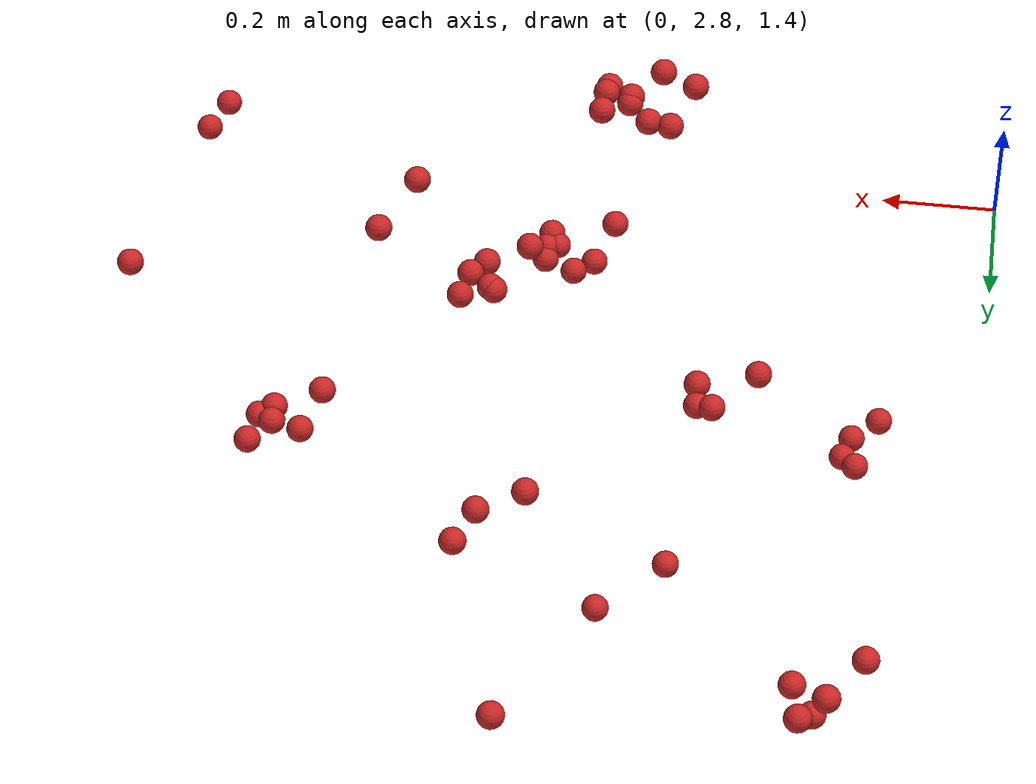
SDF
<sdf version="1.4">
 <model name="fruit_population">
  <static>true</static>
  <link name="fruit_55">
   <pose>0.16170665496099731 4.018935598410896 1.6611038940639071 0 0 0</pose>
   <collision name="fruit_collision_55"><geometry><sphere><radius>0.022</radius></sphere></geometry></collision>
   <visual name="visual">
    <geometry><sphere><radius>0.022</radius></sphere></geometry>
    <material><script><name>Gazebo/Red</name></script></material>
   </visual>
   <inertial>
    <mass>0.05</mass>
    <inertia>
     <ixx>9.679999999999999e-06</ixx>
     <ixy>0.0</ixy>
     <ixz>0.0</ixz>
     <iyy>9.679999999999999e-06</iyy>
     <iyz>0.0</iyz>
     <izz>9.679999999999999e-06</izz>
    </inertia>
   </inertial>
   <sensor name="fruit_contact_55" type="contact">
    <plugin name="contact_plugin_55" filename="libcontact_plugin.so"/>
    <contact><collision>fruit_collision_55</collision><topic>fruit_contact_topic_55</topic></contact>
   </sensor>
  </link>
  <link name="fruit_56">
   <pose>0.7132835538557942 4.231449451580651 1.7222298759507062 0 0 0</pose>
   <collision name="fruit_collision_56"><geometry><sphere><radius>0.022</radius></sphere></geometry></collision>
   <visual name="visual">
    <geometry><sphere><radius>0.022</radius></sphere></geometry>
    <material><script><name>Gazebo/Red</name></script></material>
   </visual>
   <inertial>
    <mass>0.05</mass>
    <inertia>
     <ixx>9.679999999999999e-06</ixx>
     <ixy>0.0</ixy>
     <ixz>0.0</ixz>
     <iyy>9.679999999999999e-06</iyy>
     <iyz>0.0</iyz>
     <izz>9.679999999999999e-06</izz>
    </inertia>
   </inertial>
   <sensor name="fruit_contact_56" type="contact">
    <plugin name="contact_plugin_56" filename="libcontact_plugin.so"/>
    <contact><collision>fruit_collision_56</collision><topic>fruit_contact_topic_56</topic></contact>
   </sensor>
  </link>
  <link name="fruit_58">
   <pose>0.767205893263397 3.3056893118837287 1.7528363726847023 0 0 0</pose>
   <collision name="fruit_collision_58"><geometry><sphere><radius>0.022</radius></sphere></geometry></collision>
   <visual name="visual">
    <geometry><sphere><radius>0.022</radius></sphere></geometry>
    <material><script><name>Gazebo/Red</name></script></material>
   </visual>
   <inertial>
    <mass>0.05</mass>
    <inertia>
     <ixx>9.679999999999999e-06</ixx>
     <ixy>0.0</ixy>
     <ixz>0.0</ixz>
     <iyy>9.679999999999999e-06</iyy>
     <iyz>0.0</iyz>
     <izz>9.679999999999999e-06</izz>
    </inertia>
   </inertial>
   <sensor name="fruit_contact_58" type="contact">
    <plugin name="contact_plugin_58" filename="libcontact_plugin.so"/>
    <contact><collision>fruit_collision_58</collision><topic>fruit_contact_topic_58</topic></contact>
   </sensor>
  </link>
  <link name="fruit_65">
   <pose>0.49611628753965153 3.7348698420896222 1.491196578906683 0 0 0</pose>
   <collision name="fruit_collision_65"><geometry><sphere><radius>0.022</radius></sphere></geometry></collision>
   <visual name="visual">
    <geometry><sphere><radius>0.022</radius></sphere></geometry>
    <material><script><name>Gazebo/Red</name></script></material>
   </visual>
   <inertial>
    <mass>0.05</mass>
    <inertia>
     <ixx>9.679999999999999e-06</ixx>
     <ixy>0.0</ixy>
     <ixz>0.0</ixz>
     <iyy>9.679999999999999e-06</iyy>
     <iyz>0.0</iyz>
     <izz>9.679999999999999e-06</izz>
    </inertia>
   </inertial>
   <sensor name="fruit_contact_65" type="contact">
    <plugin name="contact_plugin_65" filename="libcontact_plugin.so"/>
    <contact><collision>fruit_collision_65</collision><topic>fruit_contact_topic_65</topic></contact>
   </sensor>
  </link>
  <link name="fruit_73">
   <pose>0.714671789980563 3.798513882416163 1.7236315470928083 0 0 0</pose>
   <collision name="fruit_collision_73"><geometry><sphere><radius>0.022</radius></sphere></geometry></collision>
   <visual name="visual">
    <geometry><sphere><radius>0.022</radius></sphere></geometry>
    <material><script><name>Gazebo/Red</name></script></material>
   </visual>
   <inertial>
    <mass>0.05</mass>
    <inertia>
     <ixx>9.679999999999999e-06</ixx>
     <ixy>0.0</ixy>
     <ixz>0.0</ixz>
     <iyy>9.679999999999999e-06</iyy>
     <iyz>0.0</iyz>
     <izz>9.679999999999999e-06</izz>
    </inertia>
   </inertial>
   <sensor name="fruit_contact_73" type="contact">
    <plugin name="contact_plugin_73" filename="libcontact_plugin.so"/>
    <contact><collision>fruit_collision_73</collision><topic>fruit_contact_topic_73</topic></contact>
   </sensor>
  </link>
  <link name="fruit_76">
   <pose>0.5806950246118119 2.9793289042569078 1.8536978970933131 0 0 0</pose>
   <collision name="fruit_collision_76"><geometry><sphere><radius>0.022</radius></sphere></geometry></collision>
   <visual name="visual">
    <geometry><sphere><radius>0.022</radius></sphere></geometry>
    <material><script><name>Gazebo/Red</name></script></material>
   </visual>
   <inertial>
    <mass>0.05</mass>
    <inertia>
     <ixx>9.679999999999999e-06</ixx>
     <ixy>0.0</ixy>
     <ixz>0.0</ixz>
     <iyy>9.679999999999999e-06</iyy>
     <iyz>0.0</iyz>
     <izz>9.679999999999999e-06</izz>
    </inertia>
   </inertial>
   <sensor name="fruit_contact_76" type="contact">
    <plugin name="contact_plugin_76" filename="libcontact_plugin.so"/>
    <contact><collision>fruit_collision_76</collision><topic>fruit_contact_topic_76</topic></contact>
   </sensor>
  </link>
  <link name="fruit_78">
   <pose>0.6453180734315201 3.1192514548510455 1.623351912111798 0 0 0</pose>
   <collision name="fruit_collision_78"><geometry><sphere><radius>0.022</radius></sphere></geometry></collision>
   <visual name="visual">
    <geometry><sphere><radius>0.022</radius></sphere></geometry>
    <material><script><name>Gazebo/Red</name></script></material>
   </visual>
   <inertial>
    <mass>0.05</mass>
    <inertia>
     <ixx>9.679999999999999e-06</ixx>
     <ixy>0.0</ixy>
     <ixz>0.0</ixz>
     <iyy>9.679999999999999e-06</iyy>
     <iyz>0.0</iyz>
     <izz>9.679999999999999e-06</izz>
    </inertia>
   </inertial>
   <sensor name="fruit_contact_78" type="contact">
    <plugin name="contact_plugin_78" filename="libcontact_plugin.so"/>
    <contact><collision>fruit_collision_78</collision><topic>fruit_contact_topic_78</topic></contact>
   </sensor>
  </link>
  <link name="fruit_89">
   <pose>0.17287285414205436 3.3944108092187326 1.493219198700815 0 0 0</pose>
   <collision name="fruit_collision_89"><geometry><sphere><radius>0.022</radius></sphere></geometry></collision>
   <visual name="visual">
    <geometry><sphere><radius>0.022</radius></sphere></geometry>
    <material><script><name>Gazebo/Red</name></script></material>
   </visual>
   <inertial>
    <mass>0.05</mass>
    <inertia>
     <ixx>9.679999999999999e-06</ixx>
     <ixy>0.0</ixy>
     <ixz>0.0</ixz>
     <iyy>9.679999999999999e-06</iyy>
     <iyz>0.0</iyz>
     <izz>9.679999999999999e-06</izz>
    </inertia>
   </inertial>
   <sensor name="fruit_contact_89" type="contact">
    <plugin name="contact_plugin_89" filename="libcontact_plugin.so"/>
    <contact><collision>fruit_collision_89</collision><topic>fruit_contact_topic_89</topic></contact>
   </sensor>
  </link>
  <link name="fruit_93">
   <pose>0.3737887256177941 3.473220109431138 1.6751598001244026 0 0 0</pose>
   <collision name="fruit_collision_93"><geometry><sphere><radius>0.022</radius></sphere></geometry></collision>
   <visual name="visual">
    <geometry><sphere><radius>0.022</radius></sphere></geometry>
    <material><script><name>Gazebo/Red</name></script></material>
   </visual>
   <inertial>
    <mass>0.05</mass>
    <inertia>
     <ixx>9.679999999999999e-06</ixx>
     <ixy>0.0</ixy>
     <ixz>0.0</ixz>
     <iyy>9.679999999999999e-06</iyy>
     <iyz>0.0</iyz>
     <izz>9.679999999999999e-06</izz>
    </inertia>
   </inertial>
   <sensor name="fruit_contact_93" type="contact">
    <plugin name="contact_plugin_93" filename="libcontact_plugin.so"/>
    <contact><collision>fruit_collision_93</collision><topic>fruit_contact_topic_93</topic></contact>
   </sensor>
  </link>
  <link name="fruit_94">
   <pose>1.3566299138702138 2.8593695568013144 1.5725413146593132 0 0 0</pose>
   <collision name="fruit_collision_94"><geometry><sphere><radius>0.022</radius></sphere></geometry></collision>
   <visual name="visual">
    <geometry><sphere><radius>0.022</radius></sphere></geometry>
    <material><script><name>Gazebo/Red</name></script></material>
   </visual>
   <inertial>
    <mass>0.05</mass>
    <inertia>
     <ixx>9.679999999999999e-06</ixx>
     <ixy>0.0</ixy>
     <ixz>0.0</ixz>
     <iyy>9.679999999999999e-06</iyy>
     <iyz>0.0</iyz>
     <izz>9.679999999999999e-06</izz>
    </inertia>
   </inertial>
   <sensor name="fruit_contact_94" type="contact">
    <plugin name="contact_plugin_94" filename="libcontact_plugin.so"/>
    <contact><collision>fruit_collision_94</collision><topic>fruit_contact_topic_94</topic></contact>
   </sensor>
  </link>
  <link name="fruit_120">
   <pose>0.2156264809770146 4.202195299955735 1.801508803253028 0 0 0</pose>
   <collision name="fruit_collision_120"><geometry><sphere><radius>0.022</radius></sphere></geometry></collision>
   <visual name="visual">
    <geometry><sphere><radius>0.022</radius></sphere></geometry>
    <material><script><name>Gazebo/Red</name></script></material>
   </visual>
   <inertial>
    <mass>0.05</mass>
    <inertia>
     <ixx>9.679999999999999e-06</ixx>
     <ixy>0.0</ixy>
     <ixz>0.0</ixz>
     <iyy>9.679999999999999e-06</iyy>
     <iyz>0.0</iyz>
     <izz>9.679999999999999e-06</izz>
    </inertia>
   </inertial>
   <sensor name="fruit_contact_120" type="contact">
    <plugin name="contact_plugin_120" filename="libcontact_plugin.so"/>
    <contact><collision>fruit_collision_120</collision><topic>fruit_contact_topic_120</topic></contact>
   </sensor>
  </link>
  <link name="fruit_122">
   <pose>1.0779534496809162 3.5574527689508053 1.6403591959265411 0 0 0</pose>
   <collision name="fruit_collision_122"><geometry><sphere><radius>0.022</radius></sphere></geometry></collision>
   <visual name="visual">
    <geometry><sphere><radius>0.022</radius></sphere></geometry>
    <material><script><name>Gazebo/Red</name></script></material>
   </visual>
   <inertial>
    <mass>0.05</mass>
    <inertia>
     <ixx>9.679999999999999e-06</ixx>
     <ixy>0.0</ixy>
     <ixz>0.0</ixz>
     <iyy>9.679999999999999e-06</iyy>
     <iyz>0.0</iyz>
     <izz>9.679999999999999e-06</izz>
    </inertia>
   </inertial>
   <sensor name="fruit_contact_122" type="contact">
    <plugin name="contact_plugin_122" filename="libcontact_plugin.so"/>
    <contact><collision>fruit_collision_122</collision><topic>fruit_contact_topic_122</topic></contact>
   </sensor>
  </link>
  <link name="fruit_138">
   <pose>0.5246994600595566 3.003085618447699 1.8492901670094113 0 0 0</pose>
   <collision name="fruit_collision_138"><geometry><sphere><radius>0.022</radius></sphere></geometry></collision>
   <visual name="visual">
    <geometry><sphere><radius>0.022</radius></sphere></geometry>
    <material><script><name>Gazebo/Red</name></script></material>
   </visual>
   <inertial>
    <mass>0.05</mass>
    <inertia>
     <ixx>9.679999999999999e-06</ixx>
     <ixy>0.0</ixy>
     <ixz>0.0</ixz>
     <iyy>9.679999999999999e-06</iyy>
     <iyz>0.0</iyz>
     <izz>9.679999999999999e-06</izz>
    </inertia>
   </inertial>
   <sensor name="fruit_contact_138" type="contact">
    <plugin name="contact_plugin_138" filename="libcontact_plugin.so"/>
    <contact><collision>fruit_collision_138</collision><topic>fruit_contact_topic_138</topic></contact>
   </sensor>
  </link>
  <link name="fruit_167">
   <pose>0.9615232894814268 3.2374727413021906 1.816518054190725 0 0 0</pose>
   <collision name="fruit_collision_167"><geometry><sphere><radius>0.022</radius></sphere></geometry></collision>
   <visual name="visual">
    <geometry><sphere><radius>0.022</radius></sphere></geometry>
    <material><script><name>Gazebo/Red</name></script></material>
   </visual>
   <inertial>
    <mass>0.05</mass>
    <inertia>
     <ixx>9.679999999999999e-06</ixx>
     <ixy>0.0</ixy>
     <ixz>0.0</ixz>
     <iyy>9.679999999999999e-06</iyy>
     <iyz>0.0</iyz>
     <izz>9.679999999999999e-06</izz>
    </inertia>
   </inertial>
   <sensor name="fruit_contact_167" type="contact">
    <plugin name="contact_plugin_167" filename="libcontact_plugin.so"/>
    <contact><collision>fruit_collision_167</collision><topic>fruit_contact_topic_167</topic></contact>
   </sensor>
  </link>
  <link name="fruit_170">
   <pose>1.4221923862119983 3.3811142676785106 1.714533730150626 0 0 0</pose>
   <collision name="fruit_collision_170"><geometry><sphere><radius>0.022</radius></sphere></geometry></collision>
   <visual name="visual">
    <geometry><sphere><radius>0.022</radius></sphere></geometry>
    <material><script><name>Gazebo/Red</name></script></material>
   </visual>
   <inertial>
    <mass>0.05</mass>
    <inertia>
     <ixx>9.679999999999999e-06</ixx>
     <ixy>0.0</ixy>
     <ixz>0.0</ixz>
     <iyy>9.679999999999999e-06</iyy>
     <iyz>0.0</iyz>
     <izz>9.679999999999999e-06</izz>
    </inertia>
   </inertial>
   <sensor name="fruit_contact_170" type="contact">
    <plugin name="contact_plugin_170" filename="libcontact_plugin.so"/>
    <contact><collision>fruit_collision_170</collision><topic>fruit_contact_topic_170</topic></contact>
   </sensor>
  </link>
  <link name="fruit_189">
   <pose>0.5994948378175486 3.8327869196481186 1.4866793100424607 0 0 0</pose>
   <collision name="fruit_collision_189"><geometry><sphere><radius>0.022</radius></sphere></geometry></collision>
   <visual name="visual">
    <geometry><sphere><radius>0.022</radius></sphere></geometry>
    <material><script><name>Gazebo/Red</name></script></material>
   </visual>
   <inertial>
    <mass>0.05</mass>
    <inertia>
     <ixx>9.679999999999999e-06</ixx>
     <ixy>0.0</ixy>
     <ixz>0.0</ixz>
     <iyy>9.679999999999999e-06</iyy>
     <iyz>0.0</iyz>
     <izz>9.679999999999999e-06</izz>
    </inertia>
   </inertial>
   <sensor name="fruit_contact_189" type="contact">
    <plugin name="contact_plugin_189" filename="libcontact_plugin.so"/>
    <contact><collision>fruit_collision_189</collision><topic>fruit_contact_topic_189</topic></contact>
   </sensor>
  </link>
  <link name="fruit_224">
   <pose>0.8683322845739797 3.41517020827784 1.742468900610712 0 0 0</pose>
   <collision name="fruit_collision_224"><geometry><sphere><radius>0.022</radius></sphere></geometry></collision>
   <visual name="visual">
    <geometry><sphere><radius>0.022</radius></sphere></geometry>
    <material><script><name>Gazebo/Red</name></script></material>
   </visual>
   <inertial>
    <mass>0.05</mass>
    <inertia>
     <ixx>9.679999999999999e-06</ixx>
     <ixy>0.0</ixy>
     <ixz>0.0</ixz>
     <iyy>9.679999999999999e-06</iyy>
     <iyz>0.0</iyz>
     <izz>9.679999999999999e-06</izz>
    </inertia>
   </inertial>
   <sensor name="fruit_contact_224" type="contact">
    <plugin name="contact_plugin_224" filename="libcontact_plugin.so"/>
    <contact><collision>fruit_collision_224</collision><topic>fruit_contact_topic_224</topic></contact>
   </sensor>
  </link>
  <link name="fruit_230">
   <pose>0.21553802432271027 3.431440111884738 1.486587975173758 0 0 0</pose>
   <collision name="fruit_collision_230"><geometry><sphere><radius>0.022</radius></sphere></geometry></collision>
   <visual name="visual">
    <geometry><sphere><radius>0.022</radius></sphere></geometry>
    <material><script><name>Gazebo/Red</name></script></material>
   </visual>
   <inertial>
    <mass>0.05</mass>
    <inertia>
     <ixx>9.679999999999999e-06</ixx>
     <ixy>0.0</ixy>
     <ixz>0.0</ixz>
     <iyy>9.679999999999999e-06</iyy>
     <iyz>0.0</iyz>
     <izz>9.679999999999999e-06</izz>
    </inertia>
   </inertial>
   <sensor name="fruit_contact_230" type="contact">
    <plugin name="contact_plugin_230" filename="libcontact_plugin.so"/>
    <contact><collision>fruit_collision_230</collision><topic>fruit_contact_topic_230</topic></contact>
   </sensor>
  </link>
  <link name="fruit_241">
   <pose>0.2554737119383111 4.22850339887013 1.78184889418618 0 0 0</pose>
   <collision name="fruit_collision_241"><geometry><sphere><radius>0.022</radius></sphere></geometry></collision>
   <visual name="visual">
    <geometry><sphere><radius>0.022</radius></sphere></geometry>
    <material><script><name>Gazebo/Red</name></script></material>
   </visual>
   <inertial>
    <mass>0.05</mass>
    <inertia>
     <ixx>9.679999999999999e-06</ixx>
     <ixy>0.0</ixy>
     <ixz>0.0</ixz>
     <iyy>9.679999999999999e-06</iyy>
     <iyz>0.0</iyz>
     <izz>9.679999999999999e-06</izz>
    </inertia>
   </inertial>
   <sensor name="fruit_contact_241" type="contact">
    <plugin name="contact_plugin_241" filename="libcontact_plugin.so"/>
    <contact><collision>fruit_collision_241</collision><topic>fruit_contact_topic_241</topic></contact>
   </sensor>
  </link>
  <link name="fruit_245">
   <pose>1.1861712488986158 3.6569616831936647 1.6192954539005486 0 0 0</pose>
   <collision name="fruit_collision_245"><geometry><sphere><radius>0.022</radius></sphere></geometry></collision>
   <visual name="visual">
    <geometry><sphere><radius>0.022</radius></sphere></geometry>
    <material><script><name>Gazebo/Red</name></script></material>
   </visual>
   <inertial>
    <mass>0.05</mass>
    <inertia>
     <ixx>9.679999999999999e-06</ixx>
     <ixy>0.0</ixy>
     <ixz>0.0</ixz>
     <iyy>9.679999999999999e-06</iyy>
     <iyz>0.0</iyz>
     <izz>9.679999999999999e-06</izz>
    </inertia>
   </inertial>
   <sensor name="fruit_contact_245" type="contact">
    <plugin name="contact_plugin_245" filename="libcontact_plugin.so"/>
    <contact><collision>fruit_collision_245</collision><topic>fruit_contact_topic_245</topic></contact>
   </sensor>
  </link>
  <link name="fruit_249">
   <pose>0.5956645768697884 3.08244948451317 1.8384598540170747 0 0 0</pose>
   <collision name="fruit_collision_249"><geometry><sphere><radius>0.022</radius></sphere></geometry></collision>
   <visual name="visual">
    <geometry><sphere><radius>0.022</radius></sphere></geometry>
    <material><script><name>Gazebo/Red</name></script></material>
   </visual>
   <inertial>
    <mass>0.05</mass>
    <inertia>
     <ixx>9.679999999999999e-06</ixx>
     <ixy>0.0</ixy>
     <ixz>0.0</ixz>
     <iyy>9.679999999999999e-06</iyy>
     <iyz>0.0</iyz>
     <izz>9.679999999999999e-06</izz>
    </inertia>
   </inertial>
   <sensor name="fruit_contact_249" type="contact">
    <plugin name="contact_plugin_249" filename="libcontact_plugin.so"/>
    <contact><collision>fruit_collision_249</collision><topic>fruit_contact_topic_249</topic></contact>
   </sensor>
  </link>
  <link name="fruit_264">
   <pose>0.6722715282753153 3.196866433305664 1.6098733167191157 0 0 0</pose>
   <collision name="fruit_collision_264"><geometry><sphere><radius>0.022</radius></sphere></geometry></collision>
   <visual name="visual">
    <geometry><sphere><radius>0.022</radius></sphere></geometry>
    <material><script><name>Gazebo/Red</name></script></material>
   </visual>
   <inertial>
    <mass>0.05</mass>
    <inertia>
     <ixx>9.679999999999999e-06</ixx>
     <ixy>0.0</ixy>
     <ixz>0.0</ixz>
     <iyy>9.679999999999999e-06</iyy>
     <iyz>0.0</iyz>
     <izz>9.679999999999999e-06</izz>
    </inertia>
   </inertial>
   <sensor name="fruit_contact_264" type="contact">
    <plugin name="contact_plugin_264" filename="libcontact_plugin.so"/>
    <contact><collision>fruit_collision_264</collision><topic>fruit_contact_topic_264</topic></contact>
   </sensor>
  </link>
  <link name="fruit_266">
   <pose>0.4710620005780265 3.50093073341375 1.6706702130676458 0 0 0</pose>
   <collision name="fruit_collision_266"><geometry><sphere><radius>0.022</radius></sphere></geometry></collision>
   <visual name="visual">
    <geometry><sphere><radius>0.022</radius></sphere></geometry>
    <material><script><name>Gazebo/Red</name></script></material>
   </visual>
   <inertial>
    <mass>0.05</mass>
    <inertia>
     <ixx>9.679999999999999e-06</ixx>
     <ixy>0.0</ixy>
     <ixz>0.0</ixz>
     <iyy>9.679999999999999e-06</iyy>
     <iyz>0.0</iyz>
     <izz>9.679999999999999e-06</izz>
    </inertia>
   </inertial>
   <sensor name="fruit_contact_266" type="contact">
    <plugin name="contact_plugin_266" filename="libcontact_plugin.so"/>
    <contact><collision>fruit_collision_266</collision><topic>fruit_contact_topic_266</topic></contact>
   </sensor>
  </link>
  <link name="fruit_277">
   <pose>0.6300392720637117 3.046741992375702 1.8424931438713554 0 0 0</pose>
   <collision name="fruit_collision_277"><geometry><sphere><radius>0.022</radius></sphere></geometry></collision>
   <visual name="visual">
    <geometry><sphere><radius>0.022</radius></sphere></geometry>
    <material><script><name>Gazebo/Red</name></script></material>
   </visual>
   <inertial>
    <mass>0.05</mass>
    <inertia>
     <ixx>9.679999999999999e-06</ixx>
     <ixy>0.0</ixy>
     <ixz>0.0</ixz>
     <iyy>9.679999999999999e-06</iyy>
     <iyz>0.0</iyz>
     <izz>9.679999999999999e-06</izz>
    </inertia>
   </inertial>
   <sensor name="fruit_contact_277" type="contact">
    <plugin name="contact_plugin_277" filename="libcontact_plugin.so"/>
    <contact><collision>fruit_collision_277</collision><topic>fruit_contact_topic_277</topic></contact>
   </sensor>
  </link>
  <link name="fruit_279">
   <pose>0.8148760970699538 3.907474260885056 1.7211778409152625 0 0 0</pose>
   <collision name="fruit_collision_279"><geometry><sphere><radius>0.022</radius></sphere></geometry></collision>
   <visual name="visual">
    <geometry><sphere><radius>0.022</radius></sphere></geometry>
    <material><script><name>Gazebo/Red</name></script></material>
   </visual>
   <inertial>
    <mass>0.05</mass>
    <inertia>
     <ixx>9.679999999999999e-06</ixx>
     <ixy>0.0</ixy>
     <ixz>0.0</ixz>
     <iyy>9.679999999999999e-06</iyy>
     <iyz>0.0</iyz>
     <izz>9.679999999999999e-06</izz>
    </inertia>
   </inertial>
   <sensor name="fruit_contact_279" type="contact">
    <plugin name="contact_plugin_279" filename="libcontact_plugin.so"/>
    <contact><collision>fruit_collision_279</collision><topic>fruit_contact_topic_279</topic></contact>
   </sensor>
  </link>
  <link name="fruit_285">
   <pose>1.3827509033796372 2.91084892030989 1.5600386902438206 0 0 0</pose>
   <collision name="fruit_collision_285"><geometry><sphere><radius>0.022</radius></sphere></geometry></collision>
   <visual name="visual">
    <geometry><sphere><radius>0.022</radius></sphere></geometry>
    <material><script><name>Gazebo/Red</name></script></material>
   </visual>
   <inertial>
    <mass>0.05</mass>
    <inertia>
     <ixx>9.679999999999999e-06</ixx>
     <ixy>0.0</ixy>
     <ixz>0.0</ixz>
     <iyy>9.679999999999999e-06</iyy>
     <iyz>0.0</iyz>
     <izz>9.679999999999999e-06</izz>
    </inertia>
   </inertial>
   <sensor name="fruit_contact_285" type="contact">
    <plugin name="contact_plugin_285" filename="libcontact_plugin.so"/>
    <contact><collision>fruit_collision_285</collision><topic>fruit_contact_topic_285</topic></contact>
   </sensor>
  </link>
  <link name="fruit_309">
   <pose>0.6740020585410303 3.077013437208804 1.8507987964731003 0 0 0</pose>
   <collision name="fruit_collision_309"><geometry><sphere><radius>0.022</radius></sphere></geometry></collision>
   <visual name="visual">
    <geometry><sphere><radius>0.022</radius></sphere></geometry>
    <material><script><name>Gazebo/Red</name></script></material>
   </visual>
   <inertial>
    <mass>0.05</mass>
    <inertia>
     <ixx>9.679999999999999e-06</ixx>
     <ixy>0.0</ixy>
     <ixz>0.0</ixz>
     <iyy>9.679999999999999e-06</iyy>
     <iyz>0.0</iyz>
     <izz>9.679999999999999e-06</izz>
    </inertia>
   </inertial>
   <sensor name="fruit_contact_309" type="contact">
    <plugin name="contact_plugin_309" filename="libcontact_plugin.so"/>
    <contact><collision>fruit_collision_309</collision><topic>fruit_contact_topic_309</topic></contact>
   </sensor>
  </link>
  <link name="fruit_311">
   <pose>0.7496216259963261 3.1460774409012946 1.6169726962938444 0 0 0</pose>
   <collision name="fruit_collision_311"><geometry><sphere><radius>0.022</radius></sphere></geometry></collision>
   <visual name="visual">
    <geometry><sphere><radius>0.022</radius></sphere></geometry>
    <material><script><name>Gazebo/Red</name></script></material>
   </visual>
   <inertial>
    <mass>0.05</mass>
    <inertia>
     <ixx>9.679999999999999e-06</ixx>
     <ixy>0.0</ixy>
     <ixz>0.0</ixz>
     <iyy>9.679999999999999e-06</iyy>
     <iyz>0.0</iyz>
     <izz>9.679999999999999e-06</izz>
    </inertia>
   </inertial>
   <sensor name="fruit_contact_311" type="contact">
    <plugin name="contact_plugin_311" filename="libcontact_plugin.so"/>
    <contact><collision>fruit_collision_311</collision><topic>fruit_contact_topic_311</topic></contact>
   </sensor>
  </link>
  <link name="fruit_314">
   <pose>0.667991523171165 3.008605320426364 1.839511585592788 0 0 0</pose>
   <collision name="fruit_collision_314"><geometry><sphere><radius>0.022</radius></sphere></geometry></collision>
   <visual name="visual">
    <geometry><sphere><radius>0.022</radius></sphere></geometry>
    <material><script><name>Gazebo/Red</name></script></material>
   </visual>
   <inertial>
    <mass>0.05</mass>
    <inertia>
     <ixx>9.679999999999999e-06</ixx>
     <ixy>0.0</ixy>
     <ixz>0.0</ixz>
     <iyy>9.679999999999999e-06</iyy>
     <iyz>0.0</iyz>
     <izz>9.679999999999999e-06</izz>
    </inertia>
   </inertial>
   <sensor name="fruit_contact_314" type="contact">
    <plugin name="contact_plugin_314" filename="libcontact_plugin.so"/>
    <contact><collision>fruit_collision_314</collision><topic>fruit_contact_topic_314</topic></contact>
   </sensor>
  </link>
  <link name="fruit_315">
   <pose>0.44305763546701826 3.5427771882897545 1.664538768593413 0 0 0</pose>
   <collision name="fruit_collision_315"><geometry><sphere><radius>0.022</radius></sphere></geometry></collision>
   <visual name="visual">
    <geometry><sphere><radius>0.022</radius></sphere></geometry>
    <material><script><name>Gazebo/Red</name></script></material>
   </visual>
   <inertial>
    <mass>0.05</mass>
    <inertia>
     <ixx>9.679999999999999e-06</ixx>
     <ixy>0.0</ixy>
     <ixz>0.0</ixz>
     <iyy>9.679999999999999e-06</iyy>
     <iyz>0.0</iyz>
     <izz>9.679999999999999e-06</izz>
    </inertia>
   </inertial>
   <sensor name="fruit_contact_315" type="contact">
    <plugin name="contact_plugin_315" filename="libcontact_plugin.so"/>
    <contact><collision>fruit_collision_315</collision><topic>fruit_contact_topic_315</topic></contact>
   </sensor>
  </link>
  <link name="fruit_330">
   <pose>0.2361160999321702 4.124149450933068 1.6510671693120944 0 0 0</pose>
   <collision name="fruit_collision_330"><geometry><sphere><radius>0.022</radius></sphere></geometry></collision>
   <visual name="visual">
    <geometry><sphere><radius>0.022</radius></sphere></geometry>
    <material><script><name>Gazebo/Red</name></script></material>
   </visual>
   <inertial>
    <mass>0.05</mass>
    <inertia>
     <ixx>9.679999999999999e-06</ixx>
     <ixy>0.0</ixy>
     <ixz>0.0</ixz>
     <iyy>9.679999999999999e-06</iyy>
     <iyz>0.0</iyz>
     <izz>9.679999999999999e-06</izz>
    </inertia>
   </inertial>
   <sensor name="fruit_contact_330" type="contact">
    <plugin name="contact_plugin_330" filename="libcontact_plugin.so"/>
    <contact><collision>fruit_collision_330</collision><topic>fruit_contact_topic_330</topic></contact>
   </sensor>
  </link>
  <link name="fruit_352">
   <pose>1.17550638322337 3.6023158158280375 1.6189626214294848 0 0 0</pose>
   <collision name="fruit_collision_352"><geometry><sphere><radius>0.022</radius></sphere></geometry></collision>
   <visual name="visual">
    <geometry><sphere><radius>0.022</radius></sphere></geometry>
    <material><script><name>Gazebo/Red</name></script></material>
   </visual>
   <inertial>
    <mass>0.05</mass>
    <inertia>
     <ixx>9.679999999999999e-06</ixx>
     <ixy>0.0</ixy>
     <ixz>0.0</ixz>
     <iyy>9.679999999999999e-06</iyy>
     <iyz>0.0</iyz>
     <izz>9.679999999999999e-06</izz>
    </inertia>
   </inertial>
   <sensor name="fruit_contact_352" type="contact">
    <plugin name="contact_plugin_352" filename="libcontact_plugin.so"/>
    <contact><collision>fruit_collision_352</collision><topic>fruit_contact_topic_352</topic></contact>
   </sensor>
  </link>
  <link name="fruit_369">
   <pose>0.46865362884318373 3.532549299464334 1.654917730449997 0 0 0</pose>
   <collision name="fruit_collision_369"><geometry><sphere><radius>0.022</radius></sphere></geometry></collision>
   <visual name="visual">
    <geometry><sphere><radius>0.022</radius></sphere></geometry>
    <material><script><name>Gazebo/Red</name></script></material>
   </visual>
   <inertial>
    <mass>0.05</mass>
    <inertia>
     <ixx>9.679999999999999e-06</ixx>
     <ixy>0.0</ixy>
     <ixz>0.0</ixz>
     <iyy>9.679999999999999e-06</iyy>
     <iyz>0.0</iyz>
     <izz>9.679999999999999e-06</izz>
    </inertia>
   </inertial>
   <sensor name="fruit_contact_369" type="contact">
    <plugin name="contact_plugin_369" filename="libcontact_plugin.so"/>
    <contact><collision>fruit_collision_369</collision><topic>fruit_contact_topic_369</topic></contact>
   </sensor>
  </link>
  <link name="fruit_379">
   <pose>0.7897911021147137 3.826294381953373 1.7019408524085862 0 0 0</pose>
   <collision name="fruit_collision_379"><geometry><sphere><radius>0.022</radius></sphere></geometry></collision>
   <visual name="visual">
    <geometry><sphere><radius>0.022</radius></sphere></geometry>
    <material><script><name>Gazebo/Red</name></script></material>
   </visual>
   <inertial>
    <mass>0.05</mass>
    <inertia>
     <ixx>9.679999999999999e-06</ixx>
     <ixy>0.0</ixy>
     <ixz>0.0</ixz>
     <iyy>9.679999999999999e-06</iyy>
     <iyz>0.0</iyz>
     <izz>9.679999999999999e-06</izz>
    </inertia>
   </inertial>
   <sensor name="fruit_contact_379" type="contact">
    <plugin name="contact_plugin_379" filename="libcontact_plugin.so"/>
    <contact><collision>fruit_collision_379</collision><topic>fruit_contact_topic_379</topic></contact>
   </sensor>
  </link>
  <link name="fruit_380">
   <pose>0.8572122832879867 3.367973547802644 1.7450574023431307 0 0 0</pose>
   <collision name="fruit_collision_380"><geometry><sphere><radius>0.022</radius></sphere></geometry></collision>
   <visual name="visual">
    <geometry><sphere><radius>0.022</radius></sphere></geometry>
    <material><script><name>Gazebo/Red</name></script></material>
   </visual>
   <inertial>
    <mass>0.05</mass>
    <inertia>
     <ixx>9.679999999999999e-06</ixx>
     <ixy>0.0</ixy>
     <ixz>0.0</ixz>
     <iyy>9.679999999999999e-06</iyy>
     <iyz>0.0</iyz>
     <izz>9.679999999999999e-06</izz>
    </inertia>
   </inertial>
   <sensor name="fruit_contact_380" type="contact">
    <plugin name="contact_plugin_380" filename="libcontact_plugin.so"/>
    <contact><collision>fruit_collision_380</collision><topic>fruit_contact_topic_380</topic></contact>
   </sensor>
  </link>
  <link name="fruit_464">
   <pose>1.1520295880419957 3.5910553720981206 1.6293245901182398 0 0 0</pose>
   <collision name="fruit_collision_464"><geometry><sphere><radius>0.022</radius></sphere></geometry></collision>
   <visual name="visual">
    <geometry><sphere><radius>0.022</radius></sphere></geometry>
    <material><script><name>Gazebo/Red</name></script></material>
   </visual>
   <inertial>
    <mass>0.05</mass>
    <inertia>
     <ixx>9.679999999999999e-06</ixx>
     <ixy>0.0</ixy>
     <ixz>0.0</ixz>
     <iyy>9.679999999999999e-06</iyy>
     <iyz>0.0</iyz>
     <izz>9.679999999999999e-06</izz>
    </inertia>
   </inertial>
   <sensor name="fruit_contact_464" type="contact">
    <plugin name="contact_plugin_464" filename="libcontact_plugin.so"/>
    <contact><collision>fruit_collision_464</collision><topic>fruit_contact_topic_464</topic></contact>
   </sensor>
  </link>
  <link name="fruit_481">
   <pose>0.7545634844542741 3.1729910755791657 1.6114796783560985 0 0 0</pose>
   <collision name="fruit_collision_481"><geometry><sphere><radius>0.022</radius></sphere></geometry></collision>
   <visual name="visual">
    <geometry><sphere><radius>0.022</radius></sphere></geometry>
    <material><script><name>Gazebo/Red</name></script></material>
   </visual>
   <inertial>
    <mass>0.05</mass>
    <inertia>
     <ixx>9.679999999999999e-06</ixx>
     <ixy>0.0</ixy>
     <ixz>0.0</ixz>
     <iyy>9.679999999999999e-06</iyy>
     <iyz>0.0</iyz>
     <izz>9.679999999999999e-06</izz>
    </inertia>
   </inertial>
   <sensor name="fruit_contact_481" type="contact">
    <plugin name="contact_plugin_481" filename="libcontact_plugin.so"/>
    <contact><collision>fruit_collision_481</collision><topic>fruit_contact_topic_481</topic></contact>
   </sensor>
  </link>
  <link name="fruit_498">
   <pose>0.6715758420028306 3.026160450651475 1.843100160201156 0 0 0</pose>
   <collision name="fruit_collision_498"><geometry><sphere><radius>0.022</radius></sphere></geometry></collision>
   <visual name="visual">
    <geometry><sphere><radius>0.022</radius></sphere></geometry>
    <material><script><name>Gazebo/Red</name></script></material>
   </visual>
   <inertial>
    <mass>0.05</mass>
    <inertia>
     <ixx>9.679999999999999e-06</ixx>
     <ixy>0.0</ixy>
     <ixz>0.0</ixz>
     <iyy>9.679999999999999e-06</iyy>
     <iyz>0.0</iyz>
     <izz>9.679999999999999e-06</izz>
    </inertia>
   </inertial>
   <sensor name="fruit_contact_498" type="contact">
    <plugin name="contact_plugin_498" filename="libcontact_plugin.so"/>
    <contact><collision>fruit_collision_498</collision><topic>fruit_contact_topic_498</topic></contact>
   </sensor>
  </link>
  <link name="fruit_525">
   <pose>0.5586171628110632 3.0856764192103863 1.8356471117253668 0 0 0</pose>
   <collision name="fruit_collision_525"><geometry><sphere><radius>0.022</radius></sphere></geometry></collision>
   <visual name="visual">
    <geometry><sphere><radius>0.022</radius></sphere></geometry>
    <material><script><name>Gazebo/Red</name></script></material>
   </visual>
   <inertial>
    <mass>0.05</mass>
    <inertia>
     <ixx>9.679999999999999e-06</ixx>
     <ixy>0.0</ixy>
     <ixz>0.0</ixz>
     <iyy>9.679999999999999e-06</iyy>
     <iyz>0.0</iyz>
     <izz>9.679999999999999e-06</izz>
    </inertia>
   </inertial>
   <sensor name="fruit_contact_525" type="contact">
    <plugin name="contact_plugin_525" filename="libcontact_plugin.so"/>
    <contact><collision>fruit_collision_525</collision><topic>fruit_contact_topic_525</topic></contact>
   </sensor>
  </link>
  <link name="fruit_573">
   <pose>0.7050197020078379 3.218501053317269 1.6062279513869124 0 0 0</pose>
   <collision name="fruit_collision_573"><geometry><sphere><radius>0.022</radius></sphere></geometry></collision>
   <visual name="visual">
    <geometry><sphere><radius>0.022</radius></sphere></geometry>
    <material><script><name>Gazebo/Red</name></script></material>
   </visual>
   <inertial>
    <mass>0.05</mass>
    <inertia>
     <ixx>9.679999999999999e-06</ixx>
     <ixy>0.0</ixy>
     <ixz>0.0</ixz>
     <iyy>9.679999999999999e-06</iyy>
     <iyz>0.0</iyz>
     <izz>9.679999999999999e-06</izz>
    </inertia>
   </inertial>
   <sensor name="fruit_contact_573" type="contact">
    <plugin name="contact_plugin_573" filename="libcontact_plugin.so"/>
    <contact><collision>fruit_collision_573</collision><topic>fruit_contact_topic_573</topic></contact>
   </sensor>
  </link>
  <link name="fruit_580">
   <pose>0.8212016375964549 3.39801723619483 1.7488469378468094 0 0 0</pose>
   <collision name="fruit_collision_580"><geometry><sphere><radius>0.022</radius></sphere></geometry></collision>
   <visual name="visual">
    <geometry><sphere><radius>0.022</radius></sphere></geometry>
    <material><script><name>Gazebo/Red</name></script></material>
   </visual>
   <inertial>
    <mass>0.05</mass>
    <inertia>
     <ixx>9.679999999999999e-06</ixx>
     <ixy>0.0</ixy>
     <ixz>0.0</ixz>
     <iyy>9.679999999999999e-06</iyy>
     <iyz>0.0</iyz>
     <izz>9.679999999999999e-06</izz>
    </inertia>
   </inertial>
   <sensor name="fruit_contact_580" type="contact">
    <plugin name="contact_plugin_580" filename="libcontact_plugin.so"/>
    <contact><collision>fruit_collision_580</collision><topic>fruit_contact_topic_580</topic></contact>
   </sensor>
  </link>
  <link name="fruit_585">
   <pose>0.7381170401317219 3.1657199334585715 1.6084231618783282 0 0 0</pose>
   <collision name="fruit_collision_585"><geometry><sphere><radius>0.022</radius></sphere></geometry></collision>
   <visual name="visual">
    <geometry><sphere><radius>0.022</radius></sphere></geometry>
    <material><script><name>Gazebo/Red</name></script></material>
   </visual>
   <inertial>
    <mass>0.05</mass>
    <inertia>
     <ixx>9.679999999999999e-06</ixx>
     <ixy>0.0</ixy>
     <ixz>0.0</ixz>
     <iyy>9.679999999999999e-06</iyy>
     <iyz>0.0</iyz>
     <izz>9.679999999999999e-06</izz>
    </inertia>
   </inertial>
   <sensor name="fruit_contact_585" type="contact">
    <plugin name="contact_plugin_585" filename="libcontact_plugin.so"/>
    <contact><collision>fruit_collision_585</collision><topic>fruit_contact_topic_585</topic></contact>
   </sensor>
  </link>
  <link name="fruit_592">
   <pose>1.1514029856141939 3.6203776605992712 1.6278538008487367 0 0 0</pose>
   <collision name="fruit_collision_592"><geometry><sphere><radius>0.022</radius></sphere></geometry></collision>
   <visual name="visual">
    <geometry><sphere><radius>0.022</radius></sphere></geometry>
    <material><script><name>Gazebo/Red</name></script></material>
   </visual>
   <inertial>
    <mass>0.05</mass>
    <inertia>
     <ixx>9.679999999999999e-06</ixx>
     <ixy>0.0</ixy>
     <ixz>0.0</ixz>
     <iyy>9.679999999999999e-06</iyy>
     <iyz>0.0</iyz>
     <izz>9.679999999999999e-06</izz>
    </inertia>
   </inertial>
   <sensor name="fruit_contact_592" type="contact">
    <plugin name="contact_plugin_592" filename="libcontact_plugin.so"/>
    <contact><collision>fruit_collision_592</collision><topic>fruit_contact_topic_592</topic></contact>
   </sensor>
  </link>
  <link name="fruit_618">
   <pose>0.8145242134141125 3.402889488635198 1.7472914296606799 0 0 0</pose>
   <collision name="fruit_collision_618"><geometry><sphere><radius>0.022</radius></sphere></geometry></collision>
   <visual name="visual">
    <geometry><sphere><radius>0.022</radius></sphere></geometry>
    <material><script><name>Gazebo/Red</name></script></material>
   </visual>
   <inertial>
    <mass>0.05</mass>
    <inertia>
     <ixx>9.679999999999999e-06</ixx>
     <ixy>0.0</ixy>
     <ixz>0.0</ixz>
     <iyy>9.679999999999999e-06</iyy>
     <iyz>0.0</iyz>
     <izz>9.679999999999999e-06</izz>
    </inertia>
   </inertial>
   <sensor name="fruit_contact_618" type="contact">
    <plugin name="contact_plugin_618" filename="libcontact_plugin.so"/>
    <contact><collision>fruit_collision_618</collision><topic>fruit_contact_topic_618</topic></contact>
   </sensor>
  </link>
  <link name="fruit_620">
   <pose>0.6286246138606065 3.036185746331 1.8469384559426634 0 0 0</pose>
   <collision name="fruit_collision_620"><geometry><sphere><radius>0.022</radius></sphere></geometry></collision>
   <visual name="visual">
    <geometry><sphere><radius>0.022</radius></sphere></geometry>
    <material><script><name>Gazebo/Red</name></script></material>
   </visual>
   <inertial>
    <mass>0.05</mass>
    <inertia>
     <ixx>9.679999999999999e-06</ixx>
     <ixy>0.0</ixy>
     <ixz>0.0</ixz>
     <iyy>9.679999999999999e-06</iyy>
     <iyz>0.0</iyz>
     <izz>9.679999999999999e-06</izz>
    </inertia>
   </inertial>
   <sensor name="fruit_contact_620" type="contact">
    <plugin name="contact_plugin_620" filename="libcontact_plugin.so"/>
    <contact><collision>fruit_collision_620</collision><topic>fruit_contact_topic_620</topic></contact>
   </sensor>
  </link>
  <link name="fruit_635">
   <pose>0.8341076434338706 3.3376315887608885 1.7415234710380534 0 0 0</pose>
   <collision name="fruit_collision_635"><geometry><sphere><radius>0.022</radius></sphere></geometry></collision>
   <visual name="visual">
    <geometry><sphere><radius>0.022</radius></sphere></geometry>
    <material><script><name>Gazebo/Red</name></script></material>
   </visual>
   <inertial>
    <mass>0.05</mass>
    <inertia>
     <ixx>9.679999999999999e-06</ixx>
     <ixy>0.0</ixy>
     <ixz>0.0</ixz>
     <iyy>9.679999999999999e-06</iyy>
     <iyz>0.0</iyz>
     <izz>9.679999999999999e-06</izz>
    </inertia>
   </inertial>
   <sensor name="fruit_contact_635" type="contact">
    <plugin name="contact_plugin_635" filename="libcontact_plugin.so"/>
    <contact><collision>fruit_collision_635</collision><topic>fruit_contact_topic_635</topic></contact>
   </sensor>
  </link>
  <link name="fruit_684">
   <pose>0.22869163371852666 3.462461505489909 1.4744321526261608 0 0 0</pose>
   <collision name="fruit_collision_684"><geometry><sphere><radius>0.022</radius></sphere></geometry></collision>
   <visual name="visual">
    <geometry><sphere><radius>0.022</radius></sphere></geometry>
    <material><script><name>Gazebo/Red</name></script></material>
   </visual>
   <inertial>
    <mass>0.05</mass>
    <inertia>
     <ixx>9.679999999999999e-06</ixx>
     <ixy>0.0</ixy>
     <ixz>0.0</ixz>
     <iyy>9.679999999999999e-06</iyy>
     <iyz>0.0</iyz>
     <izz>9.679999999999999e-06</izz>
    </inertia>
   </inertial>
   <sensor name="fruit_contact_684" type="contact">
    <plugin name="contact_plugin_684" filename="libcontact_plugin.so"/>
    <contact><collision>fruit_collision_684</collision><topic>fruit_contact_topic_684</topic></contact>
   </sensor>
  </link>
  <link name="fruit_698">
   <pose>1.0111848713657186 3.3395900232785007 1.8033819981115045 0 0 0</pose>
   <collision name="fruit_collision_698"><geometry><sphere><radius>0.022</radius></sphere></geometry></collision>
   <visual name="visual">
    <geometry><sphere><radius>0.022</radius></sphere></geometry>
    <material><script><name>Gazebo/Red</name></script></material>
   </visual>
   <inertial>
    <mass>0.05</mass>
    <inertia>
     <ixx>9.679999999999999e-06</ixx>
     <ixy>0.0</ixy>
     <ixz>0.0</ixz>
     <iyy>9.679999999999999e-06</iyy>
     <iyz>0.0</iyz>
     <izz>9.679999999999999e-06</izz>
    </inertia>
   </inertial>
   <sensor name="fruit_contact_698" type="contact">
    <plugin name="contact_plugin_698" filename="libcontact_plugin.so"/>
    <contact><collision>fruit_collision_698</collision><topic>fruit_contact_topic_698</topic></contact>
   </sensor>
  </link>
  <link name="fruit_711">
   <pose>1.1040143318450801 3.6292682675669337 1.6237019168826574 0 0 0</pose>
   <collision name="fruit_collision_711"><geometry><sphere><radius>0.022</radius></sphere></geometry></collision>
   <visual name="visual">
    <geometry><sphere><radius>0.022</radius></sphere></geometry>
    <material><script><name>Gazebo/Red</name></script></material>
   </visual>
   <inertial>
    <mass>0.05</mass>
    <inertia>
     <ixx>9.679999999999999e-06</ixx>
     <ixy>0.0</ixy>
     <ixz>0.0</ixz>
     <iyy>9.679999999999999e-06</iyy>
     <iyz>0.0</iyz>
     <izz>9.679999999999999e-06</izz>
    </inertia>
   </inertial>
   <sensor name="fruit_contact_711" type="contact">
    <plugin name="contact_plugin_711" filename="libcontact_plugin.so"/>
    <contact><collision>fruit_collision_711</collision><topic>fruit_contact_topic_711</topic></contact>
   </sensor>
  </link>
  <link name="fruit_712">
   <pose>0.755102551600479 3.195419803458056 1.604492790454764 0 0 0</pose>
   <collision name="fruit_collision_712"><geometry><sphere><radius>0.022</radius></sphere></geometry></collision>
   <visual name="visual">
    <geometry><sphere><radius>0.022</radius></sphere></geometry>
    <material><script><name>Gazebo/Red</name></script></material>
   </visual>
   <inertial>
    <mass>0.05</mass>
    <inertia>
     <ixx>9.679999999999999e-06</ixx>
     <ixy>0.0</ixy>
     <ixz>0.0</ixz>
     <iyy>9.679999999999999e-06</iyy>
     <iyz>0.0</iyz>
     <izz>9.679999999999999e-06</izz>
    </inertia>
   </inertial>
   <sensor name="fruit_contact_712" type="contact">
    <plugin name="contact_plugin_712" filename="libcontact_plugin.so"/>
    <contact><collision>fruit_collision_712</collision><topic>fruit_contact_topic_712</topic></contact>
   </sensor>
  </link>
  <link name="fruit_760">
   <pose>0.20584412411129882 3.4957148752047558 1.4922460814133591 0 0 0</pose>
   <collision name="fruit_collision_760"><geometry><sphere><radius>0.022</radius></sphere></geometry></collision>
   <visual name="visual">
    <geometry><sphere><radius>0.022</radius></sphere></geometry>
    <material><script><name>Gazebo/Red</name></script></material>
   </visual>
   <inertial>
    <mass>0.05</mass>
    <inertia>
     <ixx>9.679999999999999e-06</ixx>
     <ixy>0.0</ixy>
     <ixz>0.0</ixz>
     <iyy>9.679999999999999e-06</iyy>
     <iyz>0.0</iyz>
     <izz>9.679999999999999e-06</izz>
    </inertia>
   </inertial>
   <sensor name="fruit_contact_760" type="contact">
    <plugin name="contact_plugin_760" filename="libcontact_plugin.so"/>
    <contact><collision>fruit_collision_760</collision><topic>fruit_contact_topic_760</topic></contact>
   </sensor>
  </link>
  <link name="fruit_810">
   <pose>0.2710872501199627 4.062458003688714 1.6393614766783557 0 0 0</pose>
   <collision name="fruit_collision_810"><geometry><sphere><radius>0.022</radius></sphere></geometry></collision>
   <visual name="visual">
    <geometry><sphere><radius>0.022</radius></sphere></geometry>
    <material><script><name>Gazebo/Red</name></script></material>
   </visual>
   <inertial>
    <mass>0.05</mass>
    <inertia>
     <ixx>9.679999999999999e-06</ixx>
     <ixy>0.0</ixy>
     <ixz>0.0</ixz>
     <iyy>9.679999999999999e-06</iyy>
     <iyz>0.0</iyz>
     <izz>9.679999999999999e-06</izz>
    </inertia>
   </inertial>
   <sensor name="fruit_contact_810" type="contact">
    <plugin name="contact_plugin_810" filename="libcontact_plugin.so"/>
    <contact><collision>fruit_collision_810</collision><topic>fruit_contact_topic_810</topic></contact>
   </sensor>
  </link>
 </model>
</sdf>
